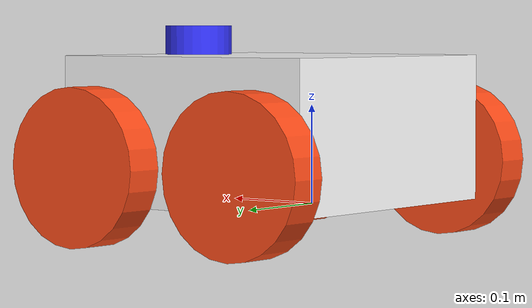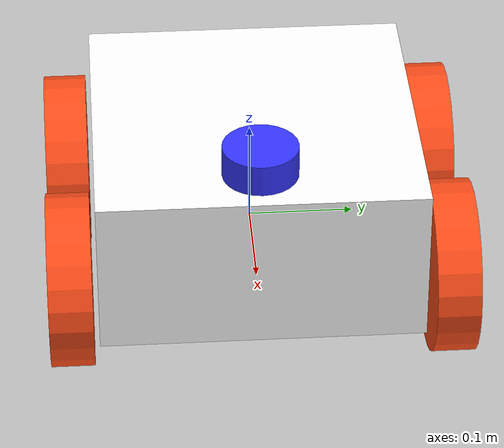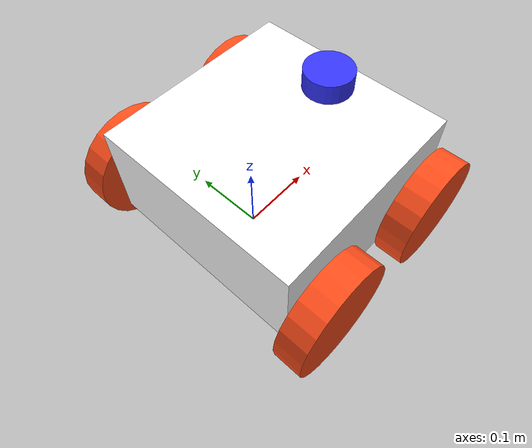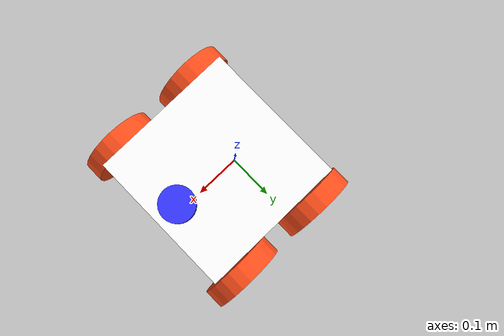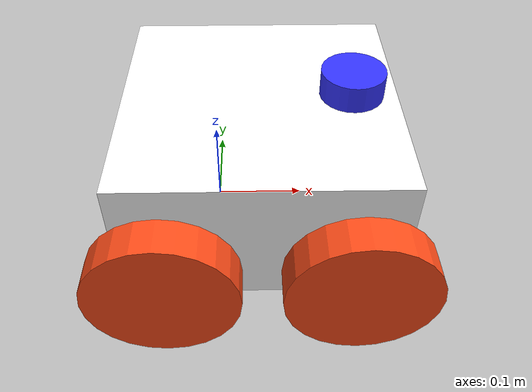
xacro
<?xml version="1.0"?>
<robot xmlns:xacro="http://www.ros.org/wiki/xacro" >

    <xacro:include filename="inertial_macros.xacro"/>

    <material name="white">
        <color rgba="1 1 1 1" />
    </material>

    <material name="orange">
        <color rgba="1 0.3 0.1 1"/>
    </material>

    <material name="blue">
        <color rgba="0.2 0.2 1 1"/>
    </material>

    <material name="black">
        <color rgba="0 0 0 1"/>
    </material>

    <!-- BASE LINK -->

    <link name="base_link">

    </link>

    <!-- CHASSIS LINK -->

    <joint name="chassis_joint" type="fixed">
        <parent link="base_link"/>
        <child link="chassis"/>
        <origin xyz="-0.1 0 0"/>
    </joint>

    <link name="chassis">
        <visual>
            <origin xyz="0.15 0 0.075"/>
            <geometry>
                <box size="0.3 0.3 0.15"/>
            </geometry>
            <material name="white"/>
        </visual>
        <collision>
            <origin xyz="0.15 0 0.075"/>
            <geometry>
                <box size="0.3 0.3 0.15"/>
            </geometry>
        </collision>
        <xacro:inertial_box mass="0.5" x="0.3" y="0.3" z="0.15">
            <origin xyz="0.15 0 0.075" rpy="0 0 0"/>
        </xacro:inertial_box>
    </link>

    <gazebo reference="chassis">
        <material>Gazebo/White</material>
    </gazebo>

    <!-- REAR LEFT WHEEL LINK -->

    <joint name="rear_left_wheel_joint" type="continuous">
        <parent link="base_link"/>
        <child link="rear_left_wheel"/>
        <origin xyz="-0.05 0.175 0.04" rpy="-${pi/2} 0 0" />
        <axis xyz="0 0 1"/>
    </joint>

    <link name="rear_left_wheel">
        <visual>
            <geometry>
                <cylinder radius="0.08" length="0.04"/>
            </geometry>
            <material name="orange"/>
        </visual>
        <collision>
            <geometry>
                <cylinder radius="0.08" length="0.04"/>
            </geometry>
        </collision>
        <xacro:inertial_cylinder mass="0.1" radius="0.08" length="0.04">
            <origin xyz="0 0 0" rpy="0 0 0"/>
        </xacro:inertial_cylinder>
    </link>

    <gazebo reference="rear_left_wheel">
        <material>Gazebo/Orange</material>
    </gazebo>

    <!-- REAR RIGHT WHEEL LINK -->

    <joint name="rear_right_wheel_joint" type="continuous">
        <parent link="base_link"/>
        <child link="rear_right_wheel"/>
        <origin xyz="-0.05 -0.175 0.04" rpy="${pi/2} 0 0" />
        <axis xyz="0 0 -1"/>
    </joint>

    <link name="rear_right_wheel">
        <visual>
            <geometry>
                <cylinder radius="0.08" length="0.04"/>
            </geometry>
            <material name="orange"/>
        </visual>
        <collision>
            <geometry>
                <cylinder radius="0.08" length="0.04"/>
            </geometry>
        </collision>
        <xacro:inertial_cylinder mass="0.1" radius="0.08" length="0.04">
            <origin xyz="0 0 0" rpy="0 0 0"/>
        </xacro:inertial_cylinder>
    </link>

    <gazebo reference="rear_right_wheel">
        <material>Gazebo/Orange</material>
    </gazebo>

    <!-- FRONT LEFT WHEEL LINK -->

    <joint name="front_left_wheel_joint" type="continuous">
        <parent link="base_link"/>
        <child link="front_left_wheel"/>
        <origin xyz="0.15 0.175 0.04" rpy="-${pi/2} 0 0" />
        <axis xyz="0 0 1"/>
    </joint>

    <link name="front_left_wheel">
        <visual>
            <geometry>
                <cylinder radius="0.08" length="0.04"/>
            </geometry>
            <material name="orange"/>
        </visual>
        <collision>
            <geometry>
                <cylinder radius="0.08" length="0.04"/>
            </geometry>
        </collision>
        <xacro:inertial_cylinder mass="0.1" radius="0.08" length="0.04">
            <origin xyz="0 0 0" rpy="0 0 0"/>
        </xacro:inertial_cylinder>
    </link>

    <gazebo reference="front_left_wheel">
        <material>Gazebo/Orange</material>
    </gazebo>

    <!-- FRONT RIGHT WHEEL LINK -->

    <joint name="front_right_wheel_joint" type="continuous">
        <parent link="base_link"/>
        <child link="front_right_wheel"/>
        <origin xyz="0.15 -0.175 0.04" rpy="${pi/2} 0 0" />
        <axis xyz="0 0 -1"/>
    </joint>

    <link name="front_right_wheel">
        <visual>
            <geometry>
                <cylinder radius="0.08" length="0.04"/>
            </geometry>
            <material name="orange"/>
        </visual>
        <collision>
            <geometry>
                <cylinder radius="0.08" length="0.04"/>
            </geometry>
        </collision>
        <xacro:inertial_cylinder mass="0.1" radius="0.08" length="0.04">
            <origin xyz="0 0 0" rpy="0 0 0"/>
        </xacro:inertial_cylinder>
    </link>

    <gazebo reference="front_right_wheel">
        <material>Gazebo/Orange</material>
    </gazebo>

    <!-- LiDAR -->

    <joint name = "lidar_joint" type = "fixed">
        <parent link = "chassis" />
        <child link = "lidar"/>
        <origin xyz = "0 0 0" rpy = "0 0 0"/>
    </joint>

    <link name="lidar">
        <visual>
            <origin xyz="0.25 0 0.165"/>
            <geometry>
                <cylinder radius="0.035" length="0.03"/>
            </geometry>
            <material name="blue"/>
        </visual>
        <collision>
            <geometry>
                <cylinder radius="0.02" length="0.06"/>
            </geometry>
        </collision>
        <xacro:inertial_cylinder mass="0.1" length="0.02" radius="0.06">
            <origin xyz="0 0 0" rpy="0 0 0"/>
        </xacro:inertial_cylinder>
    </link>

</robot>
